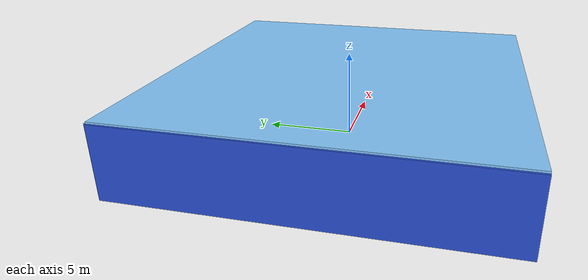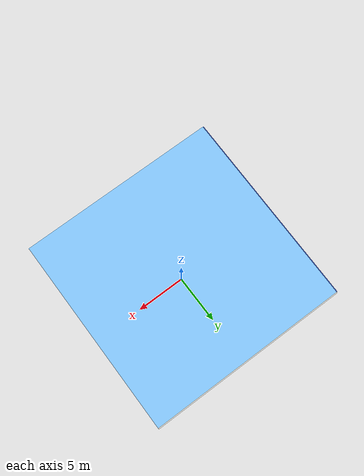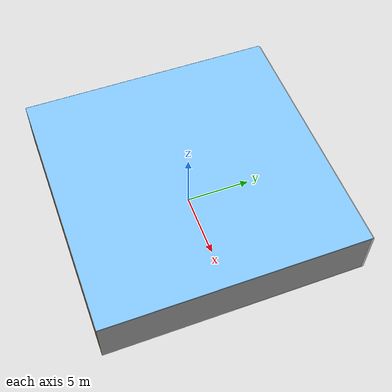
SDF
<sdf version="1.4">
 <world name="default">
  <physics type="ode">
   <max_step_size>0.001</max_step_size>
   <real_time_factor>1</real_time_factor>
   <real_time_update_rate>1000</real_time_update_rate>
   <gravity>0 0 -9.8</gravity>
  </physics>
  <scene><ambient>0.4 0.4 0.4 1</ambient><background>0.7 0.7 0.7 1</background><shadows>1</shadows></scene>
  <model name="Surrounding">
   <static>1</static>
   <link name="Ceiling">
    <collision name="Ceiling_Collision"><geometry><box><size>20 20 0.1</size></box></geometry></collision>
    <visual name="Ceiling_Visual">
     <geometry><box><size>20 20 0.1</size></box></geometry>
     <material>
      <script><uri>file://media/materials/scripts/gazebo.material</uri><name>Gazebo/SkyBlue</name></script>
     </material>
    </visual>
    <pose>0 0 4.05 0 0 0</pose>
   </link>
   <link name="Wall_South">
    <collision name="Wall_South_Collision">
     <geometry><box><size>20 0 4</size></box></geometry>
     <pose>0 0 2 0 -0 0</pose>
    </collision>
    <visual name="Wall_South_Visual">
     <pose>0 0 2 0 -0 0</pose>
     <geometry><box><size>20 0 4</size></box></geometry>
     <material>
      <script><uri>file://media/materials/scripts/gazebo.material</uri><name>Gazebo/WoodPallet</name></script>
     </material>
    </visual>
    <velocity_decay><linear>0</linear><angular>0</angular></velocity_decay>
    <pose>0 -10 0 0 -0 0</pose>
   </link>
   <link name="Wall_East">
    <collision name="Wall_21_Collision">
     <geometry><box><size>20 0 4</size></box></geometry>
     <pose>0 0 2 0 -0 0</pose>
    </collision>
    <visual name="Wall_21_Visual">
     <pose>0 0 2 0 -0 0</pose>
     <geometry><box><size>20 0 4</size></box></geometry>
     <material>
      <script><uri>file://media/materials/scripts/gazebo.material</uri><name>Gazebo/GreyGradientSky</name></script>
     </material>
    </visual>
    <velocity_decay><linear>0</linear><angular>0</angular></velocity_decay>
    <pose>10 0 0 0 -0 1.5708</pose>
   </link>
   <link name="Wall_North">
    <collision name="Wall_22_Collision">
     <geometry><box><size>20 0.2 4</size></box></geometry>
     <pose>0 0 2 0 -0 0</pose>
    </collision>
    <visual name="Wall_22_Visual">
     <pose>0 0 2 0 -0 0</pose>
     <geometry><box><size>20 0.2 4</size></box></geometry>
     <material>
      <script><uri>file://media/materials/scripts/gazebo.material</uri><name>Gazebo/CeilingTiled</name></script>
     </material>
    </visual>
    <velocity_decay><linear>0</linear><angular>0</angular></velocity_decay>
    <pose>0 10 0 0 -0 0</pose>
   </link>
   <link name="Wall_West">
    <collision name="Wall_23_Collision">
     <geometry><box><size>20 0.2 4</size></box></geometry>
     <pose>0 0 2 0 -0 0</pose>
    </collision>
    <visual name="Wall_23_Visual">
     <pose>0 0 2 0 -0 0</pose>
     <geometry><box><size>20 0.2 4</size></box></geometry>
     <material>
      <script><uri>file://media/materials/scripts/gazebo.material</uri><name>Gazebo/Blue</name></script>
     </material>
    </visual>
    <velocity_decay><linear>0</linear><angular>0</angular></velocity_decay>
    <pose>-10 0 0 0 0 -1.5708</pose>
   </link>
   <link name="Ground_link">
    <collision name="collision">
     <pose>0 0 .05 0 -0 0</pose>
     <geometry><box><size>20 20 0.1</size></box></geometry>
    </collision>
    <visual name="visual">
     <pose>0 0 .05 0 -0 0</pose>
     <geometry><box><size>20 20 0.1</size></box></geometry>
     <material>
      <script><uri>file://media/materials/scripts/gazebo.material</uri><name>Gazebo/CloudySky</name></script>
     </material>
    </visual>
   </link>
   <static>1</static>
  </model>
  <spherical_coordinates>
   <surface_model>EARTH_WGS84</surface_model>
   <latitude_deg>0</latitude_deg>
   <longitude_deg>0</longitude_deg>
   <elevation>0</elevation>
   <heading_deg>0</heading_deg>
  </spherical_coordinates>
  <light name="lightball_0" type="diffuse">
   <diffuse>0.8 0.8 0.8 1</diffuse>
   <specular>0.2 0.2 0.2 1</specular>
   <attenuation>
    <range>100</range>
    <constant>0.7</constant>
    <linear>0.01</linear>
    <quadratic>0.001</quadratic>
   </attenuation>
   <direction>-0.5 0.1 -0.9</direction>
   <pose>4.92400261629 -0.567981481766 2.51791123049 0 0 0</pose>
  </light>
  <light name="lightball_1" type="diffuse">
   <diffuse>0.8 0.8 0.8 1</diffuse>
   <specular>0.2 0.2 0.2 1</specular>
   <attenuation>
    <range>100</range>
    <constant>0.7</constant>
    <linear>0.01</linear>
    <quadratic>0.001</quadratic>
   </attenuation>
   <direction>-0.5 0.1 -0.9</direction>
   <pose>-5.02472078979 3.82661974533 1.41505896671 0 0 0</pose>
  </light>
  <light name="lightball_2" type="diffuse">
   <diffuse>0.8 0.8 0.8 1</diffuse>
   <specular>0.2 0.2 0.2 1</specular>
   <attenuation>
    <range>100</range>
    <constant>0.7</constant>
    <linear>0.01</linear>
    <quadratic>0.001</quadratic>
   </attenuation>
   <direction>-0.5 0.1 -0.9</direction>
   <pose>6.56335354812 -1.91622649757 2.46428704024 0 0 0</pose>
  </light>
  <light name="lightball_3" type="diffuse">
   <diffuse>0.8 0.8 0.8 1</diffuse>
   <specular>0.2 0.2 0.2 1</specular>
   <attenuation>
    <range>100</range>
    <constant>0.7</constant>
    <linear>0.01</linear>
    <quadratic>0.001</quadratic>
   </attenuation>
   <direction>-0.5 0.1 -0.9</direction>
   <pose>3.45118242096 4.19762407376 1.38582353522 0 0 0</pose>
  </light>
  <light name="lightball_4" type="diffuse">
   <diffuse>0.8 0.8 0.8 1</diffuse>
   <specular>0.2 0.2 0.2 1</specular>
   <attenuation>
    <range>100</range>
    <constant>0.7</constant>
    <linear>0.01</linear>
    <quadratic>0.001</quadratic>
   </attenuation>
   <direction>-0.5 0.1 -0.9</direction>
   <pose>7.02755750182 -4.80680086307 2.5352835221 0 0 0</pose>
  </light>
  <light name="lightball_5" type="diffuse">
   <diffuse>0.8 0.8 0.8 1</diffuse>
   <specular>0.2 0.2 0.2 1</specular>
   <attenuation>
    <range>100</range>
    <constant>0.7</constant>
    <linear>0.01</linear>
    <quadratic>0.001</quadratic>
   </attenuation>
   <direction>-0.5 0.1 -0.9</direction>
   <pose>8.41402825344 -5.22608236725 3.27086400118 0 0 0</pose>
  </light>
  <light name="lightball_6" type="diffuse">
   <diffuse>0.8 0.8 0.8 1</diffuse>
   <specular>0.2 0.2 0.2 1</specular>
   <attenuation>
    <range>100</range>
    <constant>0.7</constant>
    <linear>0.01</linear>
    <quadratic>0.001</quadratic>
   </attenuation>
   <direction>-0.5 0.1 -0.9</direction>
   <pose>4.9287297149 -1.66297268659 3.41435284633 0 0 0</pose>
  </light>
  <include><uri>model://cabinet</uri><pose>-7.95809034173 1.74355116502 0 0 0 2.57291241931</pose></include>
  <include><uri>model://table</uri><pose>-4.97142533468 -4.03391471024 0 0 0 2.30462045772</pose></include>
  <include><uri>model://cabinet</uri><pose>-3.76557816766 -1.66821972535 0 0 0 0.792196941906</pose></include>
  <include><uri>model://table</uri><pose>-1.74151536959 5.20129858267 0 0 0 2.6315559048</pose></include>
  <include>
   <uri>model://textured_shapes</uri>
   <pose>4.62515251499 4.76678962608 0 0 0 2.56947692955</pose>
  </include>
  <include>
   <uri>model://construction_cone</uri>
   <pose>7.64252144075 8.0898632263 0 0 0 1.2496162737</pose>
  </include>
 </world>
</sdf>

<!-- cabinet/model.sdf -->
<sdf version="1.5">
  <model name="cabinet">
    <static>true</static>
    <link name="cabinet_bottom_plate">
      <inertial>
        <pose>0 0 -1 0 0 0</pose>
        <inertia>
          <ixx>2.050000</ixx>
          <ixy>0</ixy>
          <ixz>0</ixz>
          <iyy>2.050000</iyy>
          <iyz>0</iyz>
          <izz>2.050000</izz>
        </inertia>
        <mass>25.000000</mass>
      </inertial>
      <collision name="cabinet_bottom_plate_geom">
        <pose>0 0 0.010000 0 0 0</pose>
        <geometry>
          <box>
            <size>0.450000 0.450000 0.020000</size>
          </box>
        </geometry>
      </collision>
      <visual name="cabinet_bottom_plate_geom_visual">
        <pose>0 0 0.010000 0 0 0</pose>
        <geometry>
          <box>
            <size>0.450000 0.450000 0.020000</size>
          </box>
        </geometry>
        <material>
          <script>
            <uri>model://media/materials/scripts/gazebo.material</uri>
            <name>Gazebo/Wood</name>
          </script>
        </material>
      </visual>
      <collision name="cabinet_bottom_plate_geom_cabinet_back_plate">
        <pose>0.235000 0 0.510000 0 0 0</pose>
        <geometry>
          <box>
            <size>0.020000 0.450000 1.020000</size>
          </box>
        </geometry>
      </collision>
      <visual name="cabinet_bottom_plate_geom_cabinet_back_plate_visual">
        <pose>0.235000 0 0.510000 0 0 0</pose>
        <geometry>
          <box>
            <size>0.020000 0.450000 1.020000</size>
          </box>
        </geometry>
        <material>
          <script>
            <uri>model://media/materials/scripts/gazebo.material</uri>
            <name>Gazebo/Wood</name>
          </script>
        </material>
      </visual>
      <collision name="cabinet_bottom_plate_geom_cabinet_left_plate">
        <pose>0 0.235000 0.510000 0 0 0</pose>
        <geometry>
          <box>
            <size>0.450000 0.020000 1.020000</size>
          </box>
        </geometry>
      </collision>
      <visual name="cabinet_bottom_plate_geom_cabinet_left_plate_visual">
        <pose>0 0.235000 0.510000 0 0 0</pose>
        <geometry>
          <box>
            <size>0.450000 0.020000 1.020000</size>
          </box>
        </geometry>
        <material>
          <script>
            <uri>model://media/materials/scripts/gazebo.material</uri>
            <name>Gazebo/Wood</name>
          </script>
        </material>
      </visual>
      <collision name="cabinet_bottom_plate_geom_cabinet_middle_plate">
        <pose>0 0 0.510000 0 0 0</pose>
        <geometry>
          <box>
            <size>0.450000 0.450000 0.020000</size>
          </box>
        </geometry>
      </collision>
      <visual name="cabinet_bottom_plate_geom_cabinet_middle_plate_visual">
        <pose>0 0 0.510000 0 0 0</pose>
        <geometry>
          <box>
            <size>0.450000 0.450000 0.020000</size>
          </box>
        </geometry>
        <material>
          <script>
            <uri>model://media/materials/scripts/gazebo.material</uri>
            <name>Gazebo/Wood</name>
          </script>
        </material>
      </visual>
      <collision name="cabinet_bottom_plate_geom_cabinet_right_plate">
        <pose>0 -0.235000 0.510000 0 0 0</pose>
        <geometry>
          <box>
            <size>0.450000 0.020000 1.020000</size>
          </box>
        </geometry>
      </collision>
      <visual name="cabinet_bottom_plate_geom_cabinet_right_plate_visual">
        <pose>0 -0.235000 0.510000 0 0 0</pose>
        <geometry>
          <box>
            <size>0.450000 0.020000 1.020000</size>
          </box>
        </geometry>
        <material>
          <script>
            <uri>model://media/materials/scripts/gazebo.material</uri>
            <name>Gazebo/Wood</name>
          </script>
        </material>
      </visual>
      <collision name="cabinet_bottom_plate_geom_cabinet_top_plate">
        <pose>0 0 1.010000 0 0 0</pose>
        <geometry>
          <box>
            <size>0.450000 0.450000 0.020000</size>
          </box>
        </geometry>
      </collision>
      <visual name="cabinet_bottom_plate_geom_cabinet_top_plate_visual">
        <pose>0 0 1.010000 0 0 0</pose>
        <geometry>
          <box>
            <size>0.450000 0.450000 0.020000</size>
          </box>
        </geometry>
        <material>
          <script>
            <uri>model://media/materials/scripts/gazebo.material</uri>
            <name>Gazebo/Wood</name>
          </script>
        </material>
      </visual>
    </link>
  </model>
</sdf>

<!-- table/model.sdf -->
<sdf version="1.5">
  <model name="table">
    <static>true</static>
    <link name="link">
      <collision name="surface">
        <pose>0 0 1.0 0 0 0</pose>
        <geometry>
          <box>
            <size>1.5 0.8 0.03</size>
          </box>
        </geometry>
        <surface>
          <friction>
            <ode>
              <mu>0.6</mu>
              <mu2>0.6</mu2>
            </ode>
          </friction>
        </surface>
      </collision>
      <visual name="visual1">
        <pose>0 0 1.0 0 0 0</pose>
        <geometry>
          <box>
            <size>1.5 0.8 0.03</size>
          </box>
        </geometry>
        <material>
          <script>
            <uri>model://media/materials/scripts/gazebo.material</uri>
            <name>Gazebo/Wood</name>
          </script>
        </material>
      </visual>
      <collision name="front_left_leg">
        <pose>0.68 0.38 0.5 0 0 0</pose>
        <geometry>
          <cylinder>
            <radius>0.02</radius>
            <length>1.0</length>
          </cylinder>
        </geometry>
      </collision>
      <visual name="front_left_leg">
        <pose>0.68 0.38 0.5 0 0 0</pose>
        <geometry>
          <cylinder>
            <radius>0.02</radius>
            <length>1.0</length>
          </cylinder>
        </geometry>
        <material>
          <script>
            <uri>model://media/materials/scripts/gazebo.material</uri>
            <name>Gazebo/Grey</name>
          </script>
        </material>
      </visual>
      <collision name="front_right_leg">
        <pose>0.68 -0.38 0.5 0 0 0</pose>
        <geometry>
          <cylinder>
            <radius>0.02</radius>
            <length>1.0</length>
          </cylinder>
        </geometry>
      </collision>
      <visual name="front_right_leg">
        <pose>0.68 -0.38 0.5 0 0 0</pose>
        <geometry>
          <cylinder>
            <radius>0.02</radius>
            <length>1.0</length>
          </cylinder>
        </geometry>
        <material>
          <script>
            <uri>model://media/materials/scripts/gazebo.material</uri>
            <name>Gazebo/Grey</name>
          </script>
        </material>
      </visual>
      <collision name="back_right_leg">
        <pose>-0.68 -0.38 0.5 0 0 0</pose>
        <geometry>
          <cylinder>
            <radius>0.02</radius>
            <length>1.0</length>
          </cylinder>
        </geometry>
      </collision>
      <visual name="back_right_leg">
        <pose>-0.68 -0.38 0.5 0 0 0</pose>
        <geometry>
          <cylinder>
            <radius>0.02</radius>
            <length>1.0</length>
          </cylinder>
        </geometry>
        <material>
          <script>
            <uri>model://media/materials/scripts/gazebo.material</uri>
            <name>Gazebo/Grey</name>
          </script>
        </material>
      </visual>
      <collision name="back_left_leg">
        <pose>-0.68 0.38 0.5 0 0 0</pose>
        <geometry>
          <cylinder>
            <radius>0.02</radius>
            <length>1.0</length>
          </cylinder>
        </geometry>
      </collision>
      <visual name="back_left_leg">
        <pose>-0.68 0.38 0.5 0 0 0</pose>
        <geometry>
          <cylinder>
            <radius>0.02</radius>
            <length>1.0</length>
          </cylinder>
        </geometry>
        <material>
          <script>
            <uri>model://media/materials/scripts/gazebo.material</uri>
            <name>Gazebo/Grey</name>
          </script>
        </material>
      </visual>
    </link>
  </model>
</sdf>

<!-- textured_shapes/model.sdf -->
<sdf version="1.6">
  <model name="textured_shapes">
    <pose>0 0 0.5 0 0 0</pose>
    <link name="box">
      <pose>0 -1.5 0 0 0 0</pose>
      <collision name="collision">
        <geometry>
          <box>
            <size>1 1 1</size>
          </box>
        </geometry>
      </collision>
      <visual name="visual">
        <geometry>
          <box>
            <size>1 1 1</size>
          </box>
        </geometry>
        <material>
          <script>
            <uri>model://../model_source/models/textured_shapes/materials/scripts</uri>
            <uri>model://../model_source/models/textured_shapes/materials/textures</uri>
            <name>TexturedShape/Squares</name>
          </script>
        </material>
      </visual>
    </link>
    <link name="sphere">
      <collision name="collision">
        <geometry>
          <sphere>
            <radius>0.5</radius>
          </sphere>
        </geometry>
      </collision>
      <visual name="visual">
        <geometry>
          <sphere>
            <radius>0.5</radius>
          </sphere>
        </geometry>
        <material>
          <script>
            <uri>model://../model_source/models/textured_shapes/materials/scripts</uri>
            <uri>model://../model_source/models/textured_shapes/materials/textures</uri>
            <name>TexturedShape/Squares</name>
          </script>
        </material>
      </visual>
    </link>
    <link name="cylinder">
      <pose>0 1.5 0 0 0 0</pose>
      <collision name="collision">
        <geometry>
          <cylinder>
            <radius>0.5</radius>
            <length>1</length>
          </cylinder>
        </geometry>
      </collision>
      <visual name="visual">
        <geometry>
          <cylinder>
            <radius>0.5</radius>
            <length>1</length>
          </cylinder>
        </geometry>
        <material>
          <script>
            <uri>model://../model_source/models/textured_shapes/materials/scripts</uri>
            <uri>model://../model_source/models/textured_shapes/materials/textures</uri>
            <name>TexturedShape/Squares</name>
          </script>
        </material>
      </visual>
    </link>
  </model>
</sdf>

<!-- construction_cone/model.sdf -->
<sdf version="1.5">
  <model name="Construction Cone">
    <link name="link">
      <collision name="collision">
        <geometry>
          <mesh>
            <scale>10 10 10</scale>
            <uri>file://isr-testbed/construction_cone/meshes/construction_cone.dae</uri>
          </mesh>
        </geometry>
      </collision>
      <visual name="visual">
        <geometry>
          <mesh>
            <scale>10 10 10</scale>
            <uri>file://isr-testbed/construction_cone/meshes/construction_cone.dae</uri>
          </mesh>
        </geometry>
      </visual>
    </link>
  </model>
</sdf>
